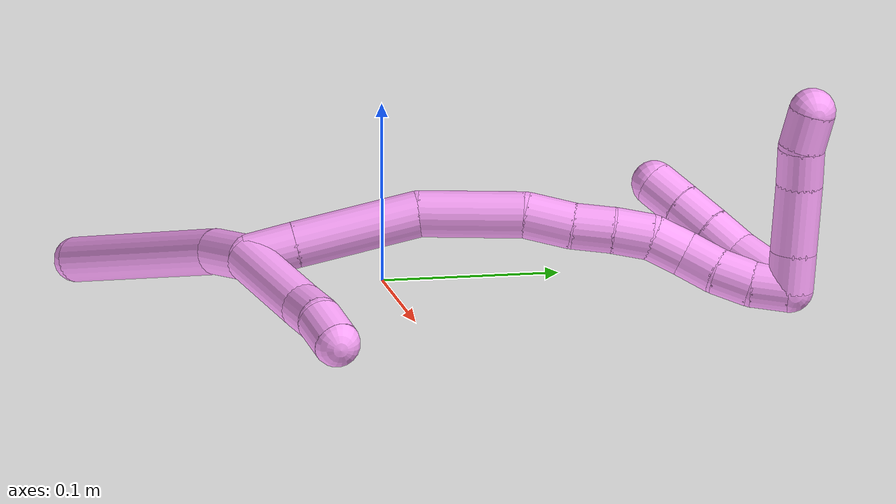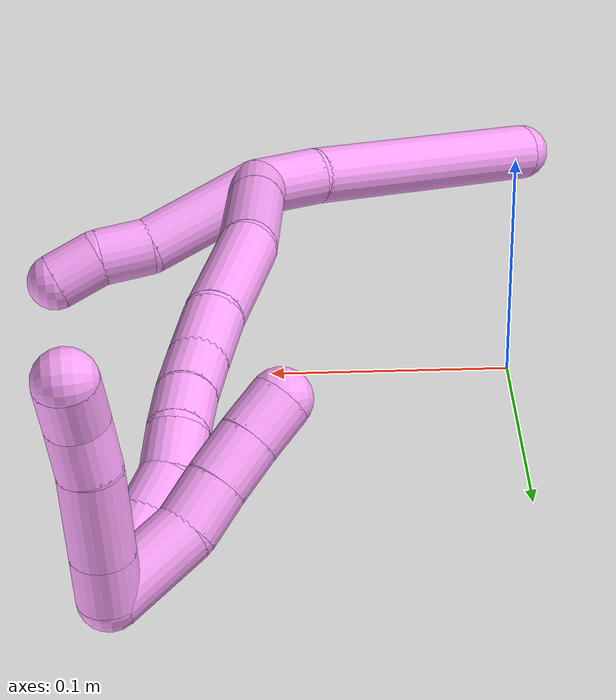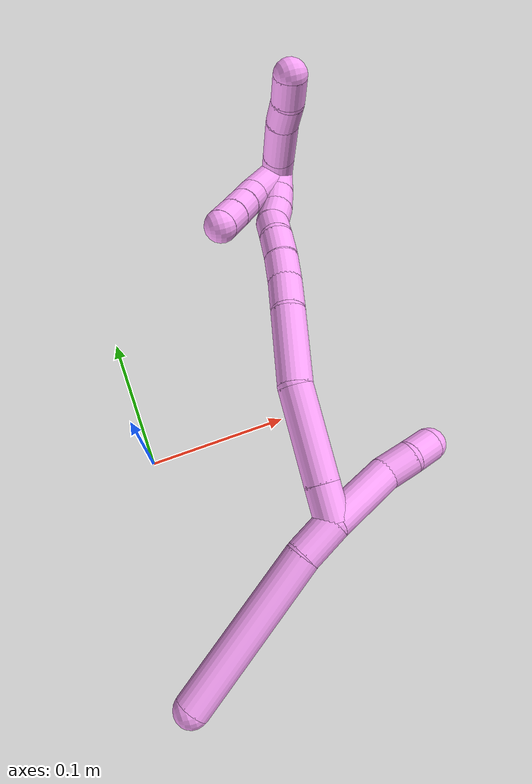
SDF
<sdf version="1.7">
 <world name="default">
  <model name="4">
   <static>0</static>
   <link name="4">
    <collision name="collision-cylinder-e_1_2_8">
     <pose>-0.003211 -0.005665 0.013189 0.405686 -0.220067 -0.045437</pose>
     <geometry><cylinder><radius>0.0125</radius><length>0.029417</length></cylinder></geometry>
     <surface>
      <friction><ode><mu>1.16</mu><mu2>1.16</mu2><slip1>0</slip1><slip2>0</slip2></ode></friction>
      <contact><ode><kp>1e+06</kp><kd>1</kd><max_vel>0</max_vel><min_depth>0.001</min_depth></ode></contact>
     </surface>
    </collision>
    <visual name="visual-cylinder-e_1_2_8">
     <pose>-0.003211 -0.005665 0.013189 0.405686 -0.220067 -0.045437</pose>
     <geometry><cylinder><radius>0.0125</radius><length>0.029417</length></cylinder></geometry>
     <material><ambient>1 0.65098 0.996078 1</ambient></material>
    </visual>
    <collision name="collision-cylinder-e_2_8_6">
     <pose>-0.02799 -0.038336 0.075779 0.500288 -0.365846 -0.094458</pose>
     <geometry><cylinder><radius>0.0125</radius><length>0.120583</length></cylinder></geometry>
     <surface>
      <friction><ode><mu>1.16</mu><mu2>1.16</mu2><slip1>0</slip1><slip2>0</slip2></ode></friction>
      <contact><ode><kp>1e+06</kp><kd>1</kd><max_vel>0</max_vel><min_depth>0.001</min_depth></ode></contact>
     </surface>
    </collision>
    <visual name="visual-cylinder-e_2_8_6">
     <pose>-0.02799 -0.038336 0.075779 0.500288 -0.365846 -0.094458</pose>
     <geometry><cylinder><radius>0.0125</radius><length>0.120583</length></cylinder></geometry>
     <material><ambient>1 0.65098 0.996078 1</ambient></material>
    </visual>
    <collision name="collision-cylinder-e_1_2_9">
     <pose>-0.004032 0.011124 -0.025169 -2.72544 -0.145498 0.664739</pose>
     <geometry><cylinder><radius>0.0125</radius><length>0.055622</length></cylinder></geometry>
     <surface>
      <friction><ode><mu>1.16</mu><mu2>1.16</mu2><slip1>0</slip1><slip2>0</slip2></ode></friction>
      <contact><ode><kp>1e+06</kp><kd>1</kd><max_vel>0</max_vel><min_depth>0.001</min_depth></ode></contact>
     </surface>
    </collision>
    <visual name="visual-cylinder-e_1_2_9">
     <pose>-0.004032 0.011124 -0.025169 -2.72544 -0.145498 0.664739</pose>
     <geometry><cylinder><radius>0.0125</radius><length>0.055622</length></cylinder></geometry>
     <material><ambient>1 0.65098 0.996078 1</ambient></material>
    </visual>
    <collision name="collision-cylinder-e_2_9_10">
     <pose>-0.007801 0.024499 -0.061634 -2.94489 0.022848 -0.230535</pose>
     <geometry><cylinder><radius>0.0125</radius><length>0.023044</length></cylinder></geometry>
     <surface>
      <friction><ode><mu>1.16</mu><mu2>1.16</mu2><slip1>0</slip1><slip2>0</slip2></ode></friction>
      <contact><ode><kp>1e+06</kp><kd>1</kd><max_vel>0</max_vel><min_depth>0.001</min_depth></ode></contact>
     </surface>
    </collision>
    <visual name="visual-cylinder-e_2_9_10">
     <pose>-0.007801 0.024499 -0.061634 -2.94489 0.022848 -0.230535</pose>
     <geometry><cylinder><radius>0.0125</radius><length>0.023044</length></cylinder></geometry>
     <material><ambient>1 0.65098 0.996078 1</ambient></material>
    </visual>
    <collision name="collision-cylinder-e_3_10_5">
     <pose>-0.010332 0.029865 -0.082743 -2.83422 -0.265035 1.42113</pose>
     <geometry><cylinder><radius>0.0125</radius><length>0.021333</length></cylinder></geometry>
     <surface>
      <friction><ode><mu>1.16</mu><mu2>1.16</mu2><slip1>0</slip1><slip2>0</slip2></ode></friction>
      <contact><ode><kp>1e+06</kp><kd>1</kd><max_vel>0</max_vel><min_depth>0.001</min_depth></ode></contact>
     </surface>
    </collision>
    <visual name="visual-cylinder-e_3_10_5">
     <pose>-0.010332 0.029865 -0.082743 -2.83422 -0.265035 1.42113</pose>
     <geometry><cylinder><radius>0.0125</radius><length>0.021333</length></cylinder></geometry>
     <material><ambient>1 0.65098 0.996078 1</ambient></material>
    </visual>
    <collision name="collision-cylinder-e_1_2_11">
     <pose>0.005486 0.012053 -0.001064 -1.6588 0.425672 -0.46355</pose>
     <geometry><cylinder><radius>0.0125</radius><length>0.026571</length></cylinder></geometry>
     <surface>
      <friction><ode><mu>1.16</mu><mu2>1.16</mu2><slip1>0</slip1><slip2>0</slip2></ode></friction>
      <contact><ode><kp>1e+06</kp><kd>1</kd><max_vel>0</max_vel><min_depth>0.001</min_depth></ode></contact>
     </surface>
    </collision>
    <visual name="visual-cylinder-e_1_2_11">
     <pose>0.005486 0.012053 -0.001064 -1.6588 0.425672 -0.46355</pose>
     <geometry><cylinder><radius>0.0125</radius><length>0.026571</length></cylinder></geometry>
     <material><ambient>1 0.65098 0.996078 1</ambient></material>
    </visual>
    <collision name="collision-cylinder-e_2_11_12">
     <pose>0.024627 0.055126 -0.005089 -1.666 0.41302 -0.453002</pose>
     <geometry><cylinder><radius>0.0125</radius><length>0.068042</length></cylinder></geometry>
     <surface>
      <friction><ode><mu>1.16</mu><mu2>1.16</mu2><slip1>0</slip1><slip2>0</slip2></ode></friction>
      <contact><ode><kp>1e+06</kp><kd>1</kd><max_vel>0</max_vel><min_depth>0.001</min_depth></ode></contact>
     </surface>
    </collision>
    <visual name="visual-cylinder-e_2_11_12">
     <pose>0.024627 0.055126 -0.005089 -1.666 0.41302 -0.453002</pose>
     <geometry><cylinder><radius>0.0125</radius><length>0.068042</length></cylinder></geometry>
     <material><ambient>1 0.65098 0.996078 1</ambient></material>
    </visual>
    <collision name="collision-cylinder-e_3_12_13">
     <pose>0.043936 0.112752 -0.016348 -1.87308 0.200145 -0.2713</pose>
     <geometry><cylinder><radius>0.0125</radius><length>0.056877</length></cylinder></geometry>
     <surface>
      <friction><ode><mu>1.16</mu><mu2>1.16</mu2><slip1>0</slip1><slip2>0</slip2></ode></friction>
      <contact><ode><kp>1e+06</kp><kd>1</kd><max_vel>0</max_vel><min_depth>0.001</min_depth></ode></contact>
     </surface>
    </collision>
    <visual name="visual-cylinder-e_3_12_13">
     <pose>0.043936 0.112752 -0.016348 -1.87308 0.200145 -0.2713</pose>
     <geometry><cylinder><radius>0.0125</radius><length>0.056877</length></cylinder></geometry>
     <material><ambient>1 0.65098 0.996078 1</ambient></material>
    </visual>
    <collision name="collision-cylinder-e_4_13_14">
     <pose>0.049321 0.151714 -0.028709 -1.88853 -0.020699 0.028596</pose>
     <geometry><cylinder><radius>0.0125</radius><length>0.026018</length></cylinder></geometry>
     <surface>
      <friction><ode><mu>1.16</mu><mu2>1.16</mu2><slip1>0</slip1><slip2>0</slip2></ode></friction>
      <contact><ode><kp>1e+06</kp><kd>1</kd><max_vel>0</max_vel><min_depth>0.001</min_depth></ode></contact>
     </surface>
    </collision>
    <visual name="visual-cylinder-e_4_13_14">
     <pose>0.049321 0.151714 -0.028709 -1.88853 -0.020699 0.028596</pose>
     <geometry><cylinder><radius>0.0125</radius><length>0.026018</length></cylinder></geometry>
     <material><ambient>1 0.65098 0.996078 1</ambient></material>
    </visual>
    <collision name="collision-cylinder-e_5_14_15">
     <pose>0.050048 0.174508 -0.035546 -1.83053 0.092007 -0.119592</pose>
     <geometry><cylinder><radius>0.0125</radius><length>0.021694</length></cylinder></geometry>
     <surface>
      <friction><ode><mu>1.16</mu><mu2>1.16</mu2><slip1>0</slip1><slip2>0</slip2></ode></friction>
      <contact><ode><kp>1e+06</kp><kd>1</kd><max_vel>0</max_vel><min_depth>0.001</min_depth></ode></contact>
     </surface>
    </collision>
    <visual name="visual-cylinder-e_5_14_15">
     <pose>0.050048 0.174508 -0.035546 -1.83053 0.092007 -0.119592</pose>
     <geometry><cylinder><radius>0.0125</radius><length>0.021694</length></cylinder></geometry>
     <material><ambient>1 0.65098 0.996078 1</ambient></material>
    </visual>
    <collision name="collision-cylinder-e_6_15_16">
     <pose>0.05112 0.194938 -0.040481 -1.7838 0.007328 -0.009082</pose>
     <geometry><cylinder><radius>0.0125</radius><length>0.020446</length></cylinder></geometry>
     <surface>
      <friction><ode><mu>1.16</mu><mu2>1.16</mu2><slip1>0</slip1><slip2>0</slip2></ode></friction>
      <contact><ode><kp>1e+06</kp><kd>1</kd><max_vel>0</max_vel><min_depth>0.001</min_depth></ode></contact>
     </surface>
    </collision>
    <visual name="visual-cylinder-e_6_15_16">
     <pose>0.05112 0.194938 -0.040481 -1.7838 0.007328 -0.009082</pose>
     <geometry><cylinder><radius>0.0125</radius><length>0.020446</length></cylinder></geometry>
     <material><ambient>1 0.65098 0.996078 1</ambient></material>
    </visual>
    <collision name="collision-cylinder-e_7_16_17">
     <pose>0.048439 0.21432 -0.044926 -1.8094 -0.277849 0.35214</pose>
     <geometry><cylinder><radius>0.0125</radius><length>0.020098</length></cylinder></geometry>
     <surface>
      <friction><ode><mu>1.16</mu><mu2>1.16</mu2><slip1>0</slip1><slip2>0</slip2></ode></friction>
      <contact><ode><kp>1e+06</kp><kd>1</kd><max_vel>0</max_vel><min_depth>0.001</min_depth></ode></contact>
     </surface>
    </collision>
    <visual name="visual-cylinder-e_7_16_17">
     <pose>0.048439 0.21432 -0.044926 -1.8094 -0.277849 0.35214</pose>
     <geometry><cylinder><radius>0.0125</radius><length>0.020098</length></cylinder></geometry>
     <material><ambient>1 0.65098 0.996078 1</ambient></material>
    </visual>
    <collision name="collision-cylinder-e_8_17_18">
     <pose>0.043406 0.23199 -0.052354 -2.12672 -0.229451 0.408718</pose>
     <geometry><cylinder><radius>0.0125</radius><length>0.02002</length></cylinder></geometry>
     <surface>
      <friction><ode><mu>1.16</mu><mu2>1.16</mu2><slip1>0</slip1><slip2>0</slip2></ode></friction>
      <contact><ode><kp>1e+06</kp><kd>1</kd><max_vel>0</max_vel><min_depth>0.001</min_depth></ode></contact>
     </surface>
    </collision>
    <visual name="visual-cylinder-e_8_17_18">
     <pose>0.043406 0.23199 -0.052354 -2.12672 -0.229451 0.408718</pose>
     <geometry><cylinder><radius>0.0125</radius><length>0.02002</length></cylinder></geometry>
     <material><ambient>1 0.65098 0.996078 1</ambient></material>
    </visual>
    <collision name="collision-cylinder-e_9_18_19">
     <pose>0.04001 0.249255 -0.061764 -2.01399 -0.111992 0.176853</pose>
     <geometry><cylinder><radius>0.0125</radius><length>0.020018</length></cylinder></geometry>
     <surface>
      <friction><ode><mu>1.16</mu><mu2>1.16</mu2><slip1>0</slip1><slip2>0</slip2></ode></friction>
      <contact><ode><kp>1e+06</kp><kd>1</kd><max_vel>0</max_vel><min_depth>0.001</min_depth></ode></contact>
     </surface>
    </collision>
    <visual name="visual-cylinder-e_9_18_19">
     <pose>0.04001 0.249255 -0.061764 -2.01399 -0.111992 0.176853</pose>
     <geometry><cylinder><radius>0.0125</radius><length>0.020018</length></cylinder></geometry>
     <material><ambient>1 0.65098 0.996078 1</ambient></material>
    </visual>
    <collision name="collision-cylinder-e_10_19_1">
     <pose>0.039803 0.267668 -0.069559 -1.92905 0.090329 -0.130179</pose>
     <geometry><cylinder><radius>0.0125</radius><length>0.020216</length></cylinder></geometry>
     <surface>
      <friction><ode><mu>1.16</mu><mu2>1.16</mu2><slip1>0</slip1><slip2>0</slip2></ode></friction>
      <contact><ode><kp>1e+06</kp><kd>1</kd><max_vel>0</max_vel><min_depth>0.001</min_depth></ode></contact>
     </surface>
    </collision>
    <visual name="visual-cylinder-e_10_19_1">
     <pose>0.039803 0.267668 -0.069559 -1.92905 0.090329 -0.130179</pose>
     <geometry><cylinder><radius>0.0125</radius><length>0.020216</length></cylinder></geometry>
     <material><ambient>1 0.65098 0.996078 1</ambient></material>
    </visual>
    <collision name="collision-cylinder-e_1_1_20">
     <pose>0.051152 0.275732 -0.07311 1.58624 1.44087 1.4562</pose>
     <geometry><cylinder><radius>0.0125</radius><length>0.021052</length></cylinder></geometry>
     <surface>
      <friction><ode><mu>1.16</mu><mu2>1.16</mu2><slip1>0</slip1><slip2>0</slip2></ode></friction>
      <contact><ode><kp>1e+06</kp><kd>1</kd><max_vel>0</max_vel><min_depth>0.001</min_depth></ode></contact>
     </surface>
    </collision>
    <visual name="visual-cylinder-e_1_1_20">
     <pose>0.051152 0.275732 -0.07311 1.58624 1.44087 1.4562</pose>
     <geometry><cylinder><radius>0.0125</radius><length>0.021052</length></cylinder></geometry>
     <material><ambient>1 0.65098 0.996078 1</ambient></material>
    </visual>
    <collision name="collision-cylinder-e_2_20_21">
     <pose>0.08005 0.271956 -0.073168 1.58625 1.44088 1.45622</pose>
     <geometry><cylinder><radius>0.0125</radius><length>0.037235</length></cylinder></geometry>
     <surface>
      <friction><ode><mu>1.16</mu><mu2>1.16</mu2><slip1>0</slip1><slip2>0</slip2></ode></friction>
      <contact><ode><kp>1e+06</kp><kd>1</kd><max_vel>0</max_vel><min_depth>0.001</min_depth></ode></contact>
     </surface>
    </collision>
    <visual name="visual-cylinder-e_2_20_21">
     <pose>0.08005 0.271956 -0.073168 1.58625 1.44088 1.45622</pose>
     <geometry><cylinder><radius>0.0125</radius><length>0.037235</length></cylinder></geometry>
     <material><ambient>1 0.65098 0.996078 1</ambient></material>
    </visual>
    <collision name="collision-cylinder-e_3_21_22">
     <pose>0.108676 0.267602 -0.074196 2.04223 1.35951 1.84437</pose>
     <geometry><cylinder><radius>0.0125</radius><length>0.020793</length></cylinder></geometry>
     <surface>
      <friction><ode><mu>1.16</mu><mu2>1.16</mu2><slip1>0</slip1><slip2>0</slip2></ode></friction>
      <contact><ode><kp>1e+06</kp><kd>1</kd><max_vel>0</max_vel><min_depth>0.001</min_depth></ode></contact>
     </surface>
    </collision>
    <visual name="visual-cylinder-e_3_21_22">
     <pose>0.108676 0.267602 -0.074196 2.04223 1.35951 1.84437</pose>
     <geometry><cylinder><radius>0.0125</radius><length>0.020793</length></cylinder></geometry>
     <material><ambient>1 0.65098 0.996078 1</ambient></material>
    </visual>
    <collision name="collision-cylinder-e_4_22_4">
     <pose>0.129259 0.266174 -0.075976 -2.56438 1.48051 -2.51315</pose>
     <geometry><cylinder><radius>0.0125</radius><length>0.02092</length></cylinder></geometry>
     <surface>
      <friction><ode><mu>1.16</mu><mu2>1.16</mu2><slip1>0</slip1><slip2>0</slip2></ode></friction>
      <contact><ode><kp>1e+06</kp><kd>1</kd><max_vel>0</max_vel><min_depth>0.001</min_depth></ode></contact>
     </surface>
    </collision>
    <visual name="visual-cylinder-e_4_22_4">
     <pose>0.129259 0.266174 -0.075976 -2.56438 1.48051 -2.51315</pose>
     <geometry><cylinder><radius>0.0125</radius><length>0.02092</length></cylinder></geometry>
     <material><ambient>1 0.65098 0.996078 1</ambient></material>
    </visual>
    <collision name="collision-cylinder-e_1_1_23">
     <pose>0.044572 0.266038 -0.058179 0.638136 0.204883 0.067896</pose>
     <geometry><cylinder><radius>0.0125</radius><length>0.037917</length></cylinder></geometry>
     <surface>
      <friction><ode><mu>1.16</mu><mu2>1.16</mu2><slip1>0</slip1><slip2>0</slip2></ode></friction>
      <contact><ode><kp>1e+06</kp><kd>1</kd><max_vel>0</max_vel><min_depth>0.001</min_depth></ode></contact>
     </surface>
    </collision>
    <visual name="visual-cylinder-e_1_1_23">
     <pose>0.044572 0.266038 -0.058179 0.638136 0.204883 0.067896</pose>
     <geometry><cylinder><radius>0.0125</radius><length>0.037917</length></cylinder></geometry>
     <material><ambient>1 0.65098 0.996078 1</ambient></material>
    </visual>
    <collision name="collision-cylinder-e_2_23_24">
     <pose>0.052346 0.247869 -0.036797 0.832333 0.38678 0.172683</pose>
     <geometry><cylinder><radius>0.0125</radius><length>0.020765</length></cylinder></geometry>
     <surface>
      <friction><ode><mu>1.16</mu><mu2>1.16</mu2><slip1>0</slip1><slip2>0</slip2></ode></friction>
      <contact><ode><kp>1e+06</kp><kd>1</kd><max_vel>0</max_vel><min_depth>0.001</min_depth></ode></contact>
     </surface>
    </collision>
    <visual name="visual-cylinder-e_2_23_24">
     <pose>0.052346 0.247869 -0.036797 0.832333 0.38678 0.172683</pose>
     <geometry><cylinder><radius>0.0125</radius><length>0.020765</length></cylinder></geometry>
     <material><ambient>1 0.65098 0.996078 1</ambient></material>
    </visual>
    <collision name="collision-cylinder-e_3_24_25">
     <pose>0.059909 0.233716 -0.02344 0.7968 0.354597 0.150552</pose>
     <geometry><cylinder><radius>0.0125</radius><length>0.021004</length></cylinder></geometry>
     <surface>
      <friction><ode><mu>1.16</mu><mu2>1.16</mu2><slip1>0</slip1><slip2>0</slip2></ode></friction>
      <contact><ode><kp>1e+06</kp><kd>1</kd><max_vel>0</max_vel><min_depth>0.001</min_depth></ode></contact>
     </surface>
    </collision>
    <visual name="visual-cylinder-e_3_24_25">
     <pose>0.059909 0.233716 -0.02344 0.7968 0.354597 0.150552</pose>
     <geometry><cylinder><radius>0.0125</radius><length>0.021004</length></cylinder></geometry>
     <material><ambient>1 0.65098 0.996078 1</ambient></material>
    </visual>
    <collision name="collision-cylinder-e_4_25_3">
     <pose>0.066859 0.220083 -0.009569 0.756102 0.331262 0.132584</pose>
     <geometry><cylinder><radius>0.0125</radius><length>0.020313</length></cylinder></geometry>
     <surface>
      <friction><ode><mu>1.16</mu><mu2>1.16</mu2><slip1>0</slip1><slip2>0</slip2></ode></friction>
      <contact><ode><kp>1e+06</kp><kd>1</kd><max_vel>0</max_vel><min_depth>0.001</min_depth></ode></contact>
     </surface>
    </collision>
    <visual name="visual-cylinder-e_4_25_3">
     <pose>0.066859 0.220083 -0.009569 0.756102 0.331262 0.132584</pose>
     <geometry><cylinder><radius>0.0125</radius><length>0.020313</length></cylinder></geometry>
     <material><ambient>1 0.65098 0.996078 1</ambient></material>
    </visual>
    <collision name="collision-sphere-3">
     <pose>0.070162 0.213494 -0.002581 0 -0 0</pose>
     <geometry><sphere><radius>0.0125</radius></sphere></geometry>
     <surface>
      <friction><ode><mu>1.16</mu><mu2>1.16</mu2><slip1>0</slip1><slip2>0</slip2></ode></friction>
      <contact><ode><kp>1e+06</kp><kd>1</kd><max_vel>0</max_vel><min_depth>0.001</min_depth></ode></contact>
     </surface>
    </collision>
    <visual name="visual-sphere-3">
     <pose>0.070162 0.213494 -0.002581 0 -0 0</pose>
     <geometry><sphere><radius>0.0125</radius></sphere></geometry>
     <material><ambient>1 0.65098 0.996078 1</ambient></material>
    </visual>
    <collision name="collision-sphere-25">
     <pose>0.063555 0.226673 -0.016556 0 -0 0</pose>
     <geometry><sphere><radius>0.0125</radius></sphere></geometry>
     <surface>
      <friction><ode><mu>1.16</mu><mu2>1.16</mu2><slip1>0</slip1><slip2>0</slip2></ode></friction>
      <contact><ode><kp>1e+06</kp><kd>1</kd><max_vel>0</max_vel><min_depth>0.001</min_depth></ode></contact>
     </surface>
    </collision>
    <visual name="visual-sphere-25">
     <pose>0.063555 0.226673 -0.016556 0 -0 0</pose>
     <geometry><sphere><radius>0.0125</radius></sphere></geometry>
     <material><ambient>1 0.65098 0.996078 1</ambient></material>
    </visual>
    <collision name="collision-sphere-24">
     <pose>0.056263 0.240759 -0.030324 0 -0 0</pose>
     <geometry><sphere><radius>0.0125</radius></sphere></geometry>
     <surface>
      <friction><ode><mu>1.16</mu><mu2>1.16</mu2><slip1>0</slip1><slip2>0</slip2></ode></friction>
      <contact><ode><kp>1e+06</kp><kd>1</kd><max_vel>0</max_vel><min_depth>0.001</min_depth></ode></contact>
     </surface>
    </collision>
    <visual name="visual-sphere-24">
     <pose>0.056263 0.240759 -0.030324 0 -0 0</pose>
     <geometry><sphere><radius>0.0125</radius></sphere></geometry>
     <material><ambient>1 0.65098 0.996078 1</ambient></material>
    </visual>
    <collision name="collision-sphere-23">
     <pose>0.04843 0.25498 -0.04327 0 -0 0</pose>
     <geometry><sphere><radius>0.0125</radius></sphere></geometry>
     <surface>
      <friction><ode><mu>1.16</mu><mu2>1.16</mu2><slip1>0</slip1><slip2>0</slip2></ode></friction>
      <contact><ode><kp>1e+06</kp><kd>1</kd><max_vel>0</max_vel><min_depth>0.001</min_depth></ode></contact>
     </surface>
    </collision>
    <visual name="visual-sphere-23">
     <pose>0.04843 0.25498 -0.04327 0 -0 0</pose>
     <geometry><sphere><radius>0.0125</radius></sphere></geometry>
     <material><ambient>1 0.65098 0.996078 1</ambient></material>
    </visual>
    <collision name="collision-sphere-4">
     <pose>0.139676 0.266689 -0.076767 0 -0 0</pose>
     <geometry><sphere><radius>0.0125</radius></sphere></geometry>
     <surface>
      <friction><ode><mu>1.16</mu><mu2>1.16</mu2><slip1>0</slip1><slip2>0</slip2></ode></friction>
      <contact><ode><kp>1e+06</kp><kd>1</kd><max_vel>0</max_vel><min_depth>0.001</min_depth></ode></contact>
     </surface>
    </collision>
    <visual name="visual-sphere-4">
     <pose>0.139676 0.266689 -0.076767 0 -0 0</pose>
     <geometry><sphere><radius>0.0125</radius></sphere></geometry>
     <material><ambient>1 0.65098 0.996078 1</ambient></material>
    </visual>
    <collision name="collision-sphere-22">
     <pose>0.118842 0.26566 -0.075186 0 -0 0</pose>
     <geometry><sphere><radius>0.0125</radius></sphere></geometry>
     <surface>
      <friction><ode><mu>1.16</mu><mu2>1.16</mu2><slip1>0</slip1><slip2>0</slip2></ode></friction>
      <contact><ode><kp>1e+06</kp><kd>1</kd><max_vel>0</max_vel><min_depth>0.001</min_depth></ode></contact>
     </surface>
    </collision>
    <visual name="visual-sphere-22">
     <pose>0.118842 0.26566 -0.075186 0 -0 0</pose>
     <geometry><sphere><radius>0.0125</radius></sphere></geometry>
     <material><ambient>1 0.65098 0.996078 1</ambient></material>
    </visual>
    <collision name="collision-sphere-21">
     <pose>0.098511 0.269545 -0.073205 0 -0 0</pose>
     <geometry><sphere><radius>0.0125</radius></sphere></geometry>
     <surface>
      <friction><ode><mu>1.16</mu><mu2>1.16</mu2><slip1>0</slip1><slip2>0</slip2></ode></friction>
      <contact><ode><kp>1e+06</kp><kd>1</kd><max_vel>0</max_vel><min_depth>0.001</min_depth></ode></contact>
     </surface>
    </collision>
    <visual name="visual-sphere-21">
     <pose>0.098511 0.269545 -0.073205 0 -0 0</pose>
     <geometry><sphere><radius>0.0125</radius></sphere></geometry>
     <material><ambient>1 0.65098 0.996078 1</ambient></material>
    </visual>
    <collision name="collision-sphere-20">
     <pose>0.06159 0.274368 -0.073131 0 -0 0</pose>
     <geometry><sphere><radius>0.0125</radius></sphere></geometry>
     <surface>
      <friction><ode><mu>1.16</mu><mu2>1.16</mu2><slip1>0</slip1><slip2>0</slip2></ode></friction>
      <contact><ode><kp>1e+06</kp><kd>1</kd><max_vel>0</max_vel><min_depth>0.001</min_depth></ode></contact>
     </surface>
    </collision>
    <visual name="visual-sphere-20">
     <pose>0.06159 0.274368 -0.073131 0 -0 0</pose>
     <geometry><sphere><radius>0.0125</radius></sphere></geometry>
     <material><ambient>1 0.65098 0.996078 1</ambient></material>
    </visual>
    <collision name="collision-sphere-5">
     <pose>-0.013126 0.032979 -0.092555 0 -0 0</pose>
     <geometry><sphere><radius>0.0125</radius></sphere></geometry>
     <surface>
      <friction><ode><mu>1.16</mu><mu2>1.16</mu2><slip1>0</slip1><slip2>0</slip2></ode></friction>
      <contact><ode><kp>1e+06</kp><kd>1</kd><max_vel>0</max_vel><min_depth>0.001</min_depth></ode></contact>
     </surface>
    </collision>
    <visual name="visual-sphere-5">
     <pose>-0.013126 0.032979 -0.092555 0 -0 0</pose>
     <geometry><sphere><radius>0.0125</radius></sphere></geometry>
     <material><ambient>1 0.65098 0.996078 1</ambient></material>
    </visual>
    <collision name="collision-sphere-10">
     <pose>-0.007538 0.02675 -0.072931 0 -0 0</pose>
     <geometry><sphere><radius>0.0125</radius></sphere></geometry>
     <surface>
      <friction><ode><mu>1.16</mu><mu2>1.16</mu2><slip1>0</slip1><slip2>0</slip2></ode></friction>
      <contact><ode><kp>1e+06</kp><kd>1</kd><max_vel>0</max_vel><min_depth>0.001</min_depth></ode></contact>
     </surface>
    </collision>
    <visual name="visual-sphere-10">
     <pose>-0.007538 0.02675 -0.072931 0 -0 0</pose>
     <geometry><sphere><radius>0.0125</radius></sphere></geometry>
     <material><ambient>1 0.65098 0.996078 1</ambient></material>
    </visual>
    <collision name="collision-sphere-6">
     <pose>-0.049559 -0.065343 0.12518 0 -0 0</pose>
     <geometry><sphere><radius>0.0125</radius></sphere></geometry>
     <surface>
      <friction><ode><mu>1.16</mu><mu2>1.16</mu2><slip1>0</slip1><slip2>0</slip2></ode></friction>
      <contact><ode><kp>1e+06</kp><kd>1</kd><max_vel>0</max_vel><min_depth>0.001</min_depth></ode></contact>
     </surface>
    </collision>
    <visual name="visual-sphere-6">
     <pose>-0.049559 -0.065343 0.12518 0 -0 0</pose>
     <geometry><sphere><radius>0.0125</radius></sphere></geometry>
     <material><ambient>1 0.65098 0.996078 1</ambient></material>
    </visual>
    <collision name="collision-sphere-9">
     <pose>-0.008064 0.022248 -0.050338 0 -0 0</pose>
     <geometry><sphere><radius>0.0125</radius></sphere></geometry>
     <surface>
      <friction><ode><mu>1.16</mu><mu2>1.16</mu2><slip1>0</slip1><slip2>0</slip2></ode></friction>
      <contact><ode><kp>1e+06</kp><kd>1</kd><max_vel>0</max_vel><min_depth>0.001</min_depth></ode></contact>
     </surface>
    </collision>
    <visual name="visual-sphere-9">
     <pose>-0.008064 0.022248 -0.050338 0 -0 0</pose>
     <geometry><sphere><radius>0.0125</radius></sphere></geometry>
     <material><ambient>1 0.65098 0.996078 1</ambient></material>
    </visual>
    <collision name="collision-sphere-2">
     <geometry><sphere><radius>0.0125</radius></sphere></geometry>
     <surface>
      <friction><ode><mu>1.16</mu><mu2>1.16</mu2><slip1>0</slip1><slip2>0</slip2></ode></friction>
      <contact><ode><kp>1e+06</kp><kd>1</kd><max_vel>0</max_vel><min_depth>0.001</min_depth></ode></contact>
     </surface>
    </collision>
    <visual name="visual-sphere-2">
     <geometry><sphere><radius>0.0125</radius></sphere></geometry>
     <material><ambient>1 0.65098 0.996078 1</ambient></material>
    </visual>
    <collision name="collision-sphere-19">
     <pose>0.038892 0.25824 -0.066029 0 -0 0</pose>
     <geometry><sphere><radius>0.0125</radius></sphere></geometry>
     <surface>
      <friction><ode><mu>1.16</mu><mu2>1.16</mu2><slip1>0</slip1><slip2>0</slip2></ode></friction>
      <contact><ode><kp>1e+06</kp><kd>1</kd><max_vel>0</max_vel><min_depth>0.001</min_depth></ode></contact>
     </surface>
    </collision>
    <visual name="visual-sphere-19">
     <pose>0.038892 0.25824 -0.066029 0 -0 0</pose>
     <geometry><sphere><radius>0.0125</radius></sphere></geometry>
     <material><ambient>1 0.65098 0.996078 1</ambient></material>
    </visual>
    <collision name="collision-sphere-8">
     <pose>-0.006422 -0.011329 0.026377 0 -0 0</pose>
     <geometry><sphere><radius>0.0125</radius></sphere></geometry>
     <surface>
      <friction><ode><mu>1.16</mu><mu2>1.16</mu2><slip1>0</slip1><slip2>0</slip2></ode></friction>
      <contact><ode><kp>1e+06</kp><kd>1</kd><max_vel>0</max_vel><min_depth>0.001</min_depth></ode></contact>
     </surface>
    </collision>
    <visual name="visual-sphere-8">
     <pose>-0.006422 -0.011329 0.026377 0 -0 0</pose>
     <geometry><sphere><radius>0.0125</radius></sphere></geometry>
     <material><ambient>1 0.65098 0.996078 1</ambient></material>
    </visual>
    <collision name="collision-sphere-11">
     <pose>0.010972 0.024106 -0.002127 0 -0 0</pose>
     <geometry><sphere><radius>0.0125</radius></sphere></geometry>
     <surface>
      <friction><ode><mu>1.16</mu><mu2>1.16</mu2><slip1>0</slip1><slip2>0</slip2></ode></friction>
      <contact><ode><kp>1e+06</kp><kd>1</kd><max_vel>0</max_vel><min_depth>0.001</min_depth></ode></contact>
     </surface>
    </collision>
    <visual name="visual-sphere-11">
     <pose>0.010972 0.024106 -0.002127 0 -0 0</pose>
     <geometry><sphere><radius>0.0125</radius></sphere></geometry>
     <material><ambient>1 0.65098 0.996078 1</ambient></material>
    </visual>
    <collision name="collision-sphere-12">
     <pose>0.038283 0.086145 -0.008051 0 -0 0</pose>
     <geometry><sphere><radius>0.0125</radius></sphere></geometry>
     <surface>
      <friction><ode><mu>1.16</mu><mu2>1.16</mu2><slip1>0</slip1><slip2>0</slip2></ode></friction>
      <contact><ode><kp>1e+06</kp><kd>1</kd><max_vel>0</max_vel><min_depth>0.001</min_depth></ode></contact>
     </surface>
    </collision>
    <visual name="visual-sphere-12">
     <pose>0.038283 0.086145 -0.008051 0 -0 0</pose>
     <geometry><sphere><radius>0.0125</radius></sphere></geometry>
     <material><ambient>1 0.65098 0.996078 1</ambient></material>
    </visual>
    <collision name="collision-sphere-13">
     <pose>0.04959 0.139359 -0.024646 0 -0 0</pose>
     <geometry><sphere><radius>0.0125</radius></sphere></geometry>
     <surface>
      <friction><ode><mu>1.16</mu><mu2>1.16</mu2><slip1>0</slip1><slip2>0</slip2></ode></friction>
      <contact><ode><kp>1e+06</kp><kd>1</kd><max_vel>0</max_vel><min_depth>0.001</min_depth></ode></contact>
     </surface>
    </collision>
    <visual name="visual-sphere-13">
     <pose>0.04959 0.139359 -0.024646 0 -0 0</pose>
     <geometry><sphere><radius>0.0125</radius></sphere></geometry>
     <material><ambient>1 0.65098 0.996078 1</ambient></material>
    </visual>
    <collision name="collision-sphere-14">
     <pose>0.049052 0.164069 -0.032772 0 -0 0</pose>
     <geometry><sphere><radius>0.0125</radius></sphere></geometry>
     <surface>
      <friction><ode><mu>1.16</mu><mu2>1.16</mu2><slip1>0</slip1><slip2>0</slip2></ode></friction>
      <contact><ode><kp>1e+06</kp><kd>1</kd><max_vel>0</max_vel><min_depth>0.001</min_depth></ode></contact>
     </surface>
    </collision>
    <visual name="visual-sphere-14">
     <pose>0.049052 0.164069 -0.032772 0 -0 0</pose>
     <geometry><sphere><radius>0.0125</radius></sphere></geometry>
     <material><ambient>1 0.65098 0.996078 1</ambient></material>
    </visual>
    <collision name="collision-sphere-15">
     <pose>0.051045 0.184946 -0.03832 0 -0 0</pose>
     <geometry><sphere><radius>0.0125</radius></sphere></geometry>
     <surface>
      <friction><ode><mu>1.16</mu><mu2>1.16</mu2><slip1>0</slip1><slip2>0</slip2></ode></friction>
      <contact><ode><kp>1e+06</kp><kd>1</kd><max_vel>0</max_vel><min_depth>0.001</min_depth></ode></contact>
     </surface>
    </collision>
    <visual name="visual-sphere-15">
     <pose>0.051045 0.184946 -0.03832 0 -0 0</pose>
     <geometry><sphere><radius>0.0125</radius></sphere></geometry>
     <material><ambient>1 0.65098 0.996078 1</ambient></material>
    </visual>
    <collision name="collision-sphere-16">
     <pose>0.051195 0.20493 -0.042642 0 -0 0</pose>
     <geometry><sphere><radius>0.0125</radius></sphere></geometry>
     <surface>
      <friction><ode><mu>1.16</mu><mu2>1.16</mu2><slip1>0</slip1><slip2>0</slip2></ode></friction>
      <contact><ode><kp>1e+06</kp><kd>1</kd><max_vel>0</max_vel><min_depth>0.001</min_depth></ode></contact>
     </surface>
    </collision>
    <visual name="visual-sphere-16">
     <pose>0.051195 0.20493 -0.042642 0 -0 0</pose>
     <geometry><sphere><radius>0.0125</radius></sphere></geometry>
     <material><ambient>1 0.65098 0.996078 1</ambient></material>
    </visual>
    <collision name="collision-sphere-17">
     <pose>0.045682 0.22371 -0.04721 0 -0 0</pose>
     <geometry><sphere><radius>0.0125</radius></sphere></geometry>
     <surface>
      <friction><ode><mu>1.16</mu><mu2>1.16</mu2><slip1>0</slip1><slip2>0</slip2></ode></friction>
      <contact><ode><kp>1e+06</kp><kd>1</kd><max_vel>0</max_vel><min_depth>0.001</min_depth></ode></contact>
     </surface>
    </collision>
    <visual name="visual-sphere-17">
     <pose>0.045682 0.22371 -0.04721 0 -0 0</pose>
     <geometry><sphere><radius>0.0125</radius></sphere></geometry>
     <material><ambient>1 0.65098 0.996078 1</ambient></material>
    </visual>
    <collision name="collision-sphere-18">
     <pose>0.041129 0.24027 -0.057499 0 -0 0</pose>
     <geometry><sphere><radius>0.0125</radius></sphere></geometry>
     <surface>
      <friction><ode><mu>1.16</mu><mu2>1.16</mu2><slip1>0</slip1><slip2>0</slip2></ode></friction>
      <contact><ode><kp>1e+06</kp><kd>1</kd><max_vel>0</max_vel><min_depth>0.001</min_depth></ode></contact>
     </surface>
    </collision>
    <visual name="visual-sphere-18">
     <pose>0.041129 0.24027 -0.057499 0 -0 0</pose>
     <geometry><sphere><radius>0.0125</radius></sphere></geometry>
     <material><ambient>1 0.65098 0.996078 1</ambient></material>
    </visual>
    <collision name="collision-sphere-1">
     <pose>0.040715 0.277095 -0.073089 0 -0 0</pose>
     <geometry><sphere><radius>0.0125</radius></sphere></geometry>
     <surface>
      <friction><ode><mu>1.16</mu><mu2>1.16</mu2><slip1>0</slip1><slip2>0</slip2></ode></friction>
      <contact><ode><kp>1e+06</kp><kd>1</kd><max_vel>0</max_vel><min_depth>0.001</min_depth></ode></contact>
     </surface>
    </collision>
    <visual name="visual-sphere-1">
     <pose>0.040715 0.277095 -0.073089 0 -0 0</pose>
     <geometry><sphere><radius>0.0125</radius></sphere></geometry>
     <material><ambient>1 0.65098 0.996078 1</ambient></material>
    </visual>
    <inertial>
     <pose>0.028671 0.120352 -0.019142 0 -0 0</pose>
     <mass>0.75</mass>
     <inertia>
      <ixx>0.000214</ixx>
      <ixy>0</ixy>
      <ixz>0</ixz>
      <iyy>0.000135</iyy>
      <iyz>0</iyz>
      <izz>4.4e-05</izz>
     </inertia>
    </inertial>
   </link>
   <pose>0.102375 -0.091381 0.040078 -1.10157 -1.3739 1.13876</pose>
  </model>
 </world>
</sdf>
